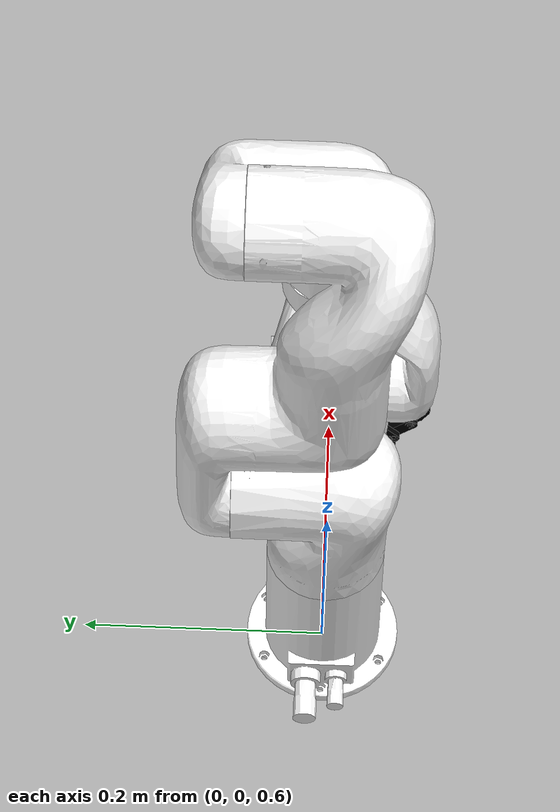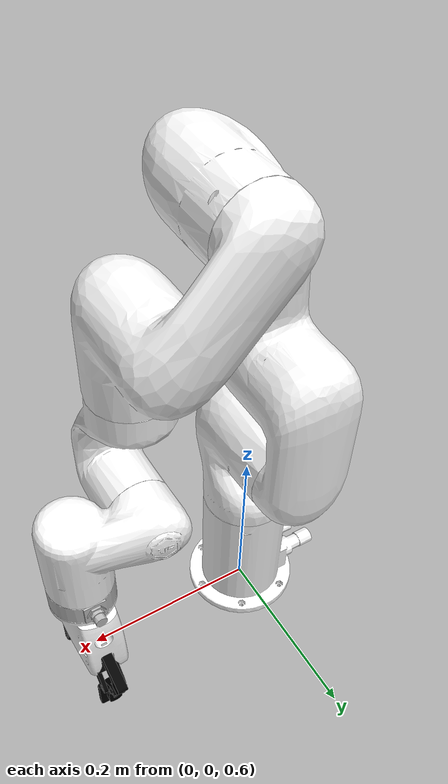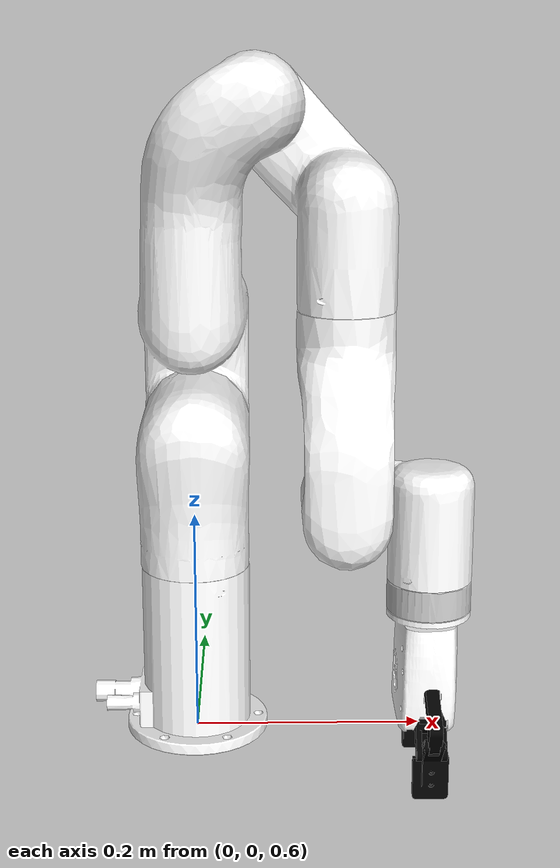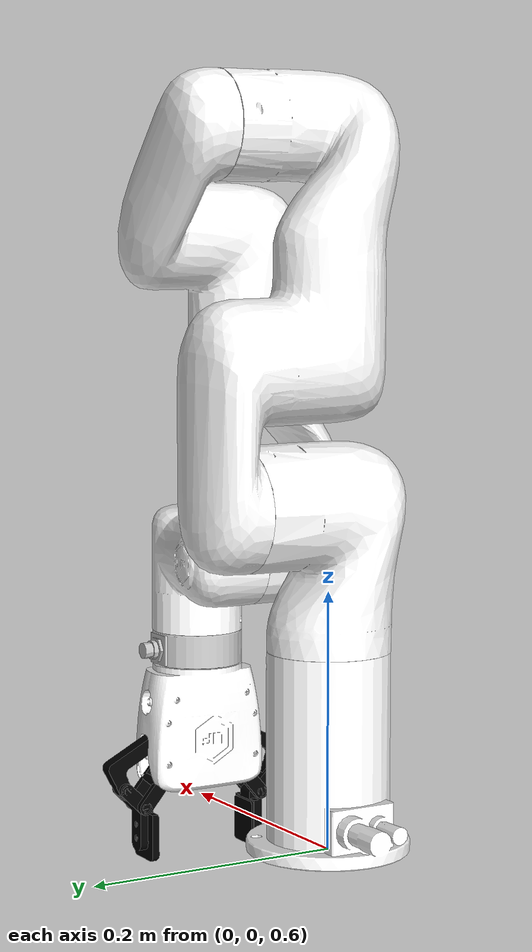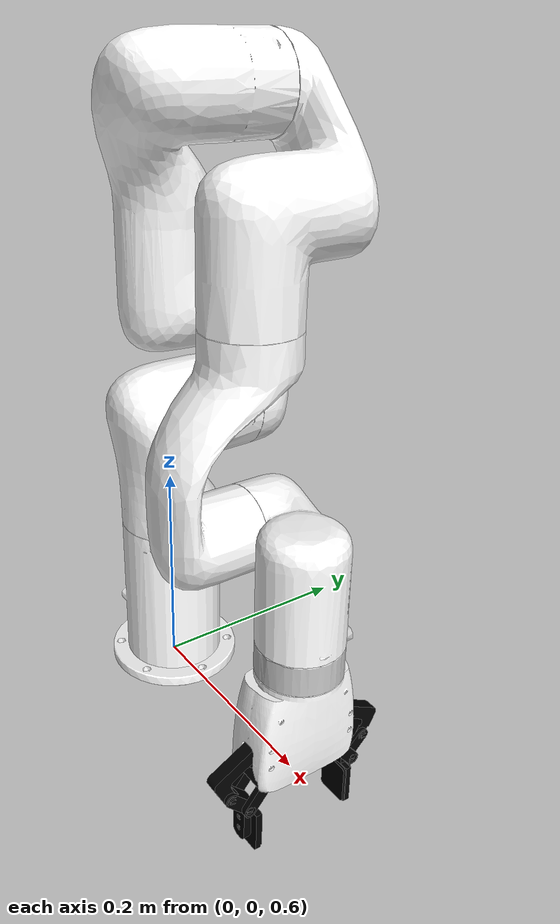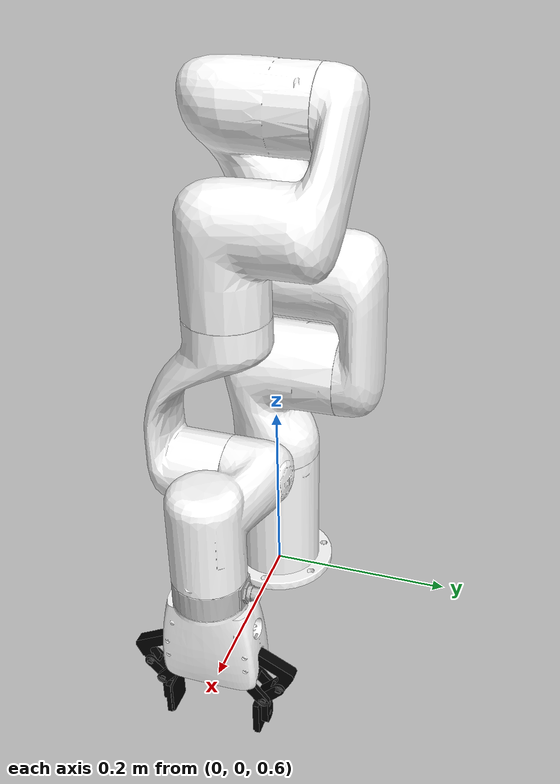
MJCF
<mujoco model="xarm6">
    <include file="xarm6_dependencies.xml"/>
    <worldbody>
    <body mocap="true" name="robot0:mocap2" pos="0.3 0 0.80" quat="0 1 0 0" >
        <geom conaffinity="0" contype="0" pos="0 0 0" rgba="0 0.5 0 0" size="0.005 0.005 0.005" type="box"></geom>
        <geom conaffinity="0" contype="0" pos="0 0 0" rgba="0.5 0 0 0" size="1 0.005 0.005" type="box"></geom>
        <geom conaffinity="0" contype="0" pos="0 0 0" rgba="0 0 0.5 0" size="0.005 1 0.001" type="box"></geom>
        <geom conaffinity="0" contype="0" pos="0 0 0" rgba="0.5 0.5 0 0" size="0.005 0.005 1" type="box"></geom>
    </body>

    <!--base link-->
    <body name="link0" pos="0 0 0.6">
        <geom name="bb" type="mesh" mesh="link_base" rgba="1 1 1 1"/>

        <!--link1-->
        <body name="link1" pos="0 0 0.267">
            <inertial pos="0.00022 0.02951 -0.0124"
                      quat="0.976139 -0.216078 -0.00387312 -0.0211677"
                      mass="2.3814"
                      diaginertia="0.00585697 0.00544434 0.00312315"/>
            <joint name="joint1" pos="0 0 0" axis="0 0 1" limited="true"
                   range="-6.28319 6.28319"
                   damping="10" frictionloss="1"/>
            <geom name="j1" type="mesh" mesh="link1" rgba="1 1 1 1"/>

            <!--link2-->
            <body name="link2" pos="0 0 0" quat="0.707105 -0.707108 0 0">
                <inertial pos="0.03881 -0.22783 0.03496"
                          quat="0.635305 0.753023 0.170976 -0.010531"
                          mass="2.2675"
                          diaginertia="0.0294477 0.0281783 0.00383449"/>
                <joint name="joint2" pos="0 0 0" axis="0 0 1" limited="true"
                       range="-2.059 2.0944" damping="10"
                       frictionloss="1"/>
                <geom name="j2"  type="mesh" mesh="link2" rgba="1 1 1 1"/>

                <!--link3-->
                <body name="link3" pos="0.0535 -0.2845 0">
                    <inertial pos="0.07041 0.11631 0.0107"
                              quat="0.845838 0.425539 -0.293179 0.132369"
                              mass="1.875"
                              diaginertia="0.00714132 0.00699471 0.00196753"/>
                    <joint name="joint3" pos="0 0 0" axis="0 0 1" limited="true"
                           range="-3.927 0.19198"
                           damping="5" frictionloss="1"/>
                    <geom name="j3" type="mesh" mesh="link3" rgba="1 1 1 1"/>

                    <!--link4-->
                    <body name="link4" pos="0.0775 0.3425 0" quat="0.707105 -0.707108 0 0">
                        <inertial pos="-0.00018 0.01798 -0.02291"
                                  quat="0.99929 -0.0369702 0.00179434 -0.00701174"
                                  mass="1.3192"
                                  diaginertia="0.00489614 0.00447403 0.00132609"/>
                        <joint name="joint4" pos="0 0 0" axis="0 0 1" limited="true"
                               range="-6.28319 6.28319"
                               damping="5" frictionloss="1"/>
                        <geom name="j4" type="mesh" mesh="link4" rgba="1 1 1 1"/>

                        <!--link5-->
                        <body name="link5" pos="0 0 0" quat="0.707105 0.707108 0 0">
                            <inertial pos="0.0651 0.03096 0.00315"
                                      quat="-0.223008 0.771309 0.16027 0.574163"
                                      mass="1.33854"
                                      diaginertia="0.00241824 0.00213367 0.00108731"/>
                            <joint name="joint5" pos="0 0 0" axis="0 0 1" limited="true"
                                   range="-1.69297 3.14159"
                                   damping="2" frictionloss="1"/>
                            <geom name="j5" type="mesh" rgba="1 1 1 1" mesh="link5" />

                            <!--link6-->
                            <body name="link6" pos="0.076 0.097 0" quat="0.707105 -0.707108 0 0">
                                <inertial pos="0.00763576 -0.00272358 0.0307029"
                                          quat="0.634077 -0.153028 -0.073538 0.754401"
                                          mass="0.838615"
                                          diaginertia="0.00129456 0.00116006 0.00078716"/>
                                <joint name="joint6" pos="0 0 0" axis="0 0 1" limited="true"
                                       range="-6.28319 6.28319"
                                       damping="2" frictionloss="5"/>
                                <geom name="j8" type="mesh" rgba="0.753 0.753 0.753 1" mesh="link6" />

                                <camera name="camera1" pos="0.078 -0.015 -0.0120" euler="3.1415 0 1.5707" fovy="42.5"/>
                                <geom name="j9" type="mesh" rgba="1 1 1 1" mesh="gripper_base_mesh" />
                                <site name="grasp" pos="0 0 0.142" rgba="1 0 0 0" type="sphere" size="0.01" group="1"/>

                                <!--left outer knuckle-->
                                <body name="left_outer_knuckle" pos="0 0.035 0.059098">
                                    <inertial pos="0 0.021559 0.015181"
                                              quat="0.47789 0.87842 0 0"
                                              mass="0.033618"
                                              diaginertia="1.9111e-05 1.79089e-05 1.90167e-06" />
                                    <joint name="drive_joint" pos="0 0 0" axis="1 0 0" limited="true" range="0 0.85" />
                                    <geom type="mesh" rgba="0 0 0 1" conaffinity="1" contype="0"  mesh="left_outer_knuckle_mesh" />

                                    <!--left finger-->
                                    <body name="left_finger" pos="0 0.035465 0.042039">
                                        <inertial pos="0 -0.016413 0.029258"
                                                  quat="0.697634 0.115353 -0.115353 0.697634"
                                                  mass="0.048304"
                                                  diaginertia="1.88037e-05 1.7493e-05 3.56792e-06" />
                                        <joint name="left_finger_joint" pos="0 0 0" axis="-1 0 0" limited="true" range="0 0.85" />
                                        <geom name="j10" type="mesh" rgba="0 0 0 1" conaffinity="3" contype="2"
                                              mesh="left_finger_mesh" friction='1.5 1.5 1.5' solref='0.01 1' solimp='0.99 0.99 0.01'/>

                                        <!--right hand-->
                                        <body name="right_hand" pos="0 -0.03 0.04" quat="-0.7071 0 0 0.7071">
                                            <site name="ee" pos="0 0 0" rgba="0 0 1 0" type="sphere" group="1"/>
                                            <site name="ee_x" pos="0 0 0" size="0.005 .1"  quat="0.707105 0.707108 0 0 " rgba="1 0 0 0" type="cylinder" group="1"/>
                                            <site name="ee_z" pos="0 0 0" size="0.005 .1" quat="0.707105 0 0 0.707108" rgba="0 0 1 0" type="cylinder" group="1"/>
                                            <site name="ee_y" pos="0 0 0" size="0.005 .1" quat="0.707105 0 0.707108 0 " rgba="0 1 0 0" type="cylinder" group="1"/>
                                        </body>
                                    </body>
                                </body>

                                <!--left inner knuckle-->
                                <body name="left_inner_knuckle" pos="0 0.02 0.074098">
                                    <inertial pos="1.86601e-06 0.0220468 0.0261335"
                                              quat="0.664139 -0.242732 0.242713 0.664146"
                                              mass="0.0230126"
                                              diaginertia="8.34216e-06 6.0949e-06 2.75601e-06" />
                                    <joint name="left_inner_knuckle_joint" pos="0 0 0" axis="1 0 0" limited="true" range="0 0.85" />
                                    <geom type="mesh" rgba="0 0 0 1" conaffinity="1" contype="0"  mesh="left_inner_knuckle_mesh" friction='1.5 1.5 1.5' solref='0.01 1' solimp='0.99 0.99 0.01'/>
                                </body>

                                <!--right outer knuckle-->
                                <body name="right_outer_knuckle" pos="0 -0.035 0.059098">
                                    <inertial pos="0 -0.021559 0.015181" quat="0.87842 0.47789 0 0" mass="0.033618" diaginertia="1.9111e-05 1.79089e-05 1.90167e-06" />
                                    <joint name="right_outer_knuckle_joint" pos="0 0 0" axis="-1 0 0" limited="true" range="0 0.85" />
                                    <geom type="mesh" rgba="0 0 0 1" conaffinity="1" contype="0"  mesh="right_outer_knuckle_mesh" />

                                    <!--right finger-->
                                    <body name="right_finger" pos="0 -0.035465 0.042039">
                                        <inertial pos="0 0.016413 0.029258" quat="0.697634 -0.115356 0.115356 0.697634" mass="0.048304" diaginertia="1.88038e-05 1.7493e-05 3.56779e-06" />
                                        <joint name="right_finger_joint" pos="0 0 0" axis="1 0 0" limited="true" range="0 0.85" />
                                        <geom name="j11" type="mesh" rgba="0 0 0 1" conaffinity="3" contype="2" mesh="right_finger_mesh" friction='1.5 1.5 1.5' solref='0.01 1' solimp='0.99 0.99 0.01'/>

                                        <!--right hand-->
                                        <body name="left_hand" pos="0 0.03 0.04" quat="-0.7071 0 0 0.7071">
                                            <site name="ee_2" pos="0 0 0" rgba="1 0 0 0" type="sphere" size="0.01" group="1"/>
                                        </body>
                                    </body>
                                </body>

                                <!--right inner knuckle-->
                                <body name="right_inner_knuckle" pos="0 -0.02 0.074098">
                                    <inertial pos="1.866e-06 -0.022047 0.026133" quat="0.66415 0.242702 -0.242721 0.664144" mass="0.023013" diaginertia="8.34209e-06 6.0949e-06 2.75601e-06" />
                                    <joint name="right_inner_knuckle_joint" pos="0 0 0" axis="-1 0 0" limited="true" range="0 0.85" />
                                    <geom type="mesh" rgba="0 0 0 1" conaffinity="1" contype="0" mesh="right_inner_knuckle_mesh" friction='1.5 1.5 1.5' solref='0.01 1' solimp='0.99 0.99 0.01'/>
                                </body>
                            </body>
                        </body>
                    </body>
                </body>
            </body>
        </body>
    </body>
    </worldbody>
</mujoco>

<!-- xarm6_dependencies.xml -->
<mujocoinclude>
    <compiler angle="radian" inertiafromgeom="auto" inertiagrouprange="4 5" meshdir="xarm_description/meshes/xarm6/visual"/>

    <asset>
        <!-- XArm6 meshes -->
        <mesh name="link_base" file="link_base.stl"/>
        <mesh name="link1" file="link1.stl"/>
        <mesh name="link2" file="link2.stl"/>
        <mesh name="link3" file="link3.stl"/>
        <mesh name="link4" file="link4.stl"/>
        <mesh name="link5" file="link5.stl"/>
        <mesh name="link6" file="link6.stl"/>

        <!-- Gripper meshes -->
        <mesh name="gripper_base_mesh" file="../../../../xarm_gripper/meshes/base_link.STL" scale="1 1 1"/>
        <mesh name="left_outer_knuckle_mesh" file="../../../../xarm_gripper/meshes/left_outer_knuckle.STL" scale="1 1 1"/>
        <mesh name="left_finger_mesh" file="../../../../xarm_gripper/meshes/left_finger.STL" scale="1 1 1"/>
        <mesh name="left_inner_knuckle_mesh" file="../../../../xarm_gripper/meshes/left_inner_knuckle.STL" scale="1 1 1"/>
        <mesh name="right_outer_knuckle_mesh" file="../../../../xarm_gripper/meshes/right_outer_knuckle.STL" scale="1 1 1"/>
        <mesh name="right_finger_mesh" file="../../../../xarm_gripper/meshes/right_finger.STL" scale="1 1 1"/>
        <mesh name="right_inner_knuckle_mesh" file="../../../../xarm_gripper/meshes/right_inner_knuckle.STL" scale="1 1 1"/>

        <!-- Tabletop mesh -->
        <mesh file="../../../../tabletop.stl" name="tabletop" scale="0.001 0.001 0.001"/>
    </asset>

</mujocoinclude>
